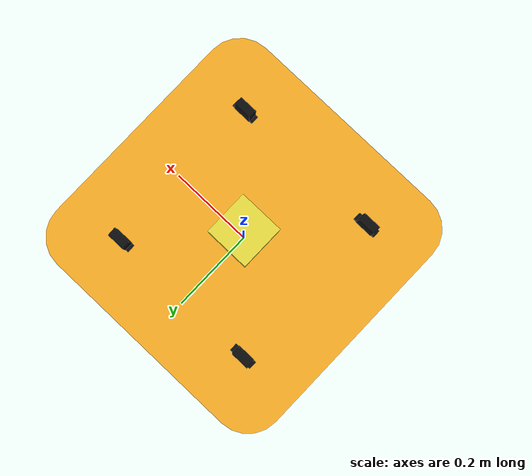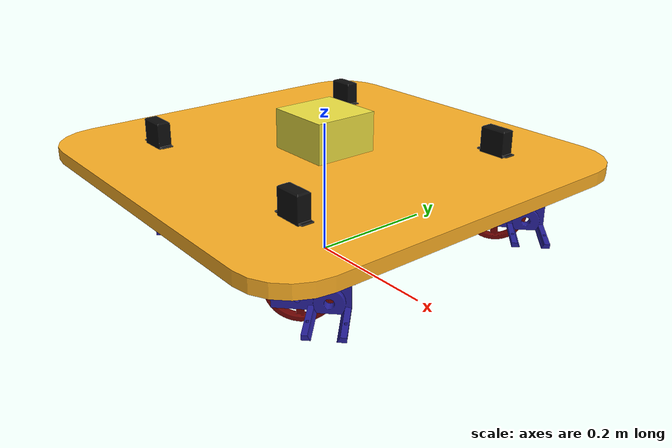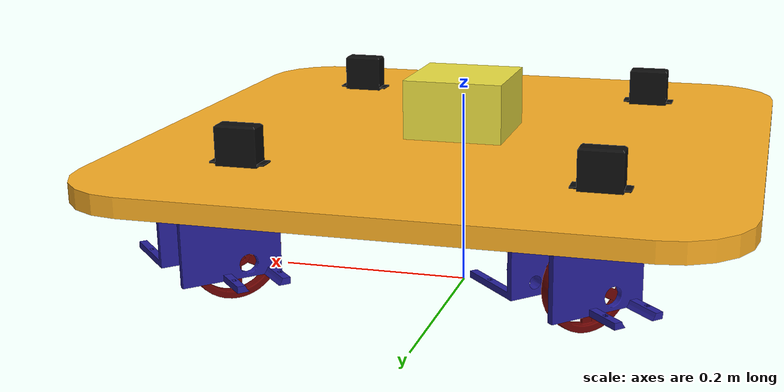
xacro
<?xml version="1.0"?>
<robot name="sparky" xmlns:xacro="http://www.ros.org/wiki/xacro">

	<!-- Define constants -->
	<!-- To Access these properties use "${Property_name}" -->
	<!-- NOTE: ALL masses are in KILOGRAMS (kg) and lengths are in METERS (m)-->

	<!-- PI constant -->
	<xacro:property name="PI" value="3.1415926535897932384626433832795"/>

	<!-- Plywood properties-->
	<xacro:property name="PLYWOOD_MASS" value="1"/>
	<xacro:property name="PLYWOOD_LENGTH" value="0.6096"/>
	<xacro:property name="PLYWOOD_WIDTH" value="0.6096"/>
	<xacro:property name="PLYWOOD_HEIGHT" value="0.01905"/>

	<!-- Servo properties -->
	<xacro:property name="SERVO_MASS" value="0.055"/>
	<xacro:property name="SERVO_LENGTH" value="0.05410"/>
	<xacro:property name="SERVO_WIDTH" value="0.02000"/>
	<xacro:property name="SERVO_HEIGHT" value="0.04425"/>
	<xacro:property name="SERVO_SHAFT_MASS" value="0.015"/>
	<xacro:property name="SERVO_SHAFT_RADIUS" value="0.003"/>
	<xacro:property name="SERVO_SHAFT_LENGTH" value="0.0254"/>

	<!-- Wheel housing structure properties -->
	<xacro:property name="WH_MASS" value="0.055"/>
	<xacro:property name="WH_LENGTH" value="0.1016"/>
	<xacro:property name="WH_WIDTH" value="0.0508"/>
	<xacro:property name="WH_HEIGHT" value="0.0508"/>

	<!-- Acetal wheel properties -->
	<xacro:property name="WHEEL_MASS" value="0.046"/>
	<xacro:property name="WHEEL_RADIUS" value="0.045"/>
	<xacro:property name="WHEEL_WIDTH" value="0.0236"/>

	<!-- Include files from urdf directory -->
	<xacro:include filename="$(find projx_robot_description)/urdf/projx_robot.gazebo"/>
	<xacro:include filename="$(find projx_robot_description)/urdf/materials.xacro"/>
	<xacro:include filename="$(find projx_robot_description)/urdf/point_structure_macro.xacro"/>
	<xacro:include filename="$(find projx_robot_description)/urdf/inertial_calc_macros.xacro"/>
	<xacro:include filename="$(find projx_robot_description)/urdf/imu_sensor.xacro"/>
	<xacro:include filename="$(find projx_robot_description)/urdf/RP_lidar_sensor.xacro"/>

	<!-- Define 2D representation of the base_link -->
    <link name="base_footprint"/>

    <!-- Robot base link -->
    <link name="base_link">

    	<!-- Collision parameters for the collision detection engine -->
    	<collision>
    		<geometry>
    			<box size="${PLYWOOD_LENGTH} ${PLYWOOD_WIDTH} ${PLYWOOD_HEIGHT}"/>
    		</geometry>
    	</collision>

    	<!-- Visual information for rendering model of robot base -->
        <visual>
            <geometry>
                <!-- Plywood is defined as a mesh file -->
                <mesh filename="package://projx_robot_description/meshes/robot_base_v1.dae"/>
            </geometry>
        </visual>

        <!-- Inertia info about robot base for the physics engine to use -->
        <inertial>
        	<mass value="${PLYWOOD_MASS}"/>
        	<box_inertia m="${PLYWOOD_MASS}" x="${PLYWOOD_LENGTH}" y="${PLYWOOD_WIDTH}" z="${PLYWOOD_HEIGHT}"/>
        </inertial>

    </link>

	<!-- Joint between FOOTPRINT and BASE -->
    <joint name="footprint_to_base_joint" type="fixed">
       <parent link="base_footprint"/>
	   <child link="base_link"/>

    	<!-- The base is about 6" of the ground -->
        <origin xyz="0 0 0.1524" rpy="0 0 0"/>
    </joint>

                        <!-- ################################## Robot sections ################################## -->
	<point_structure location="FL" x_translation="1" y_translation="1"/>
	<point_structure location="FR" x_translation="1" y_translation="-1"/>
	<point_structure location="RL" x_translation="-1" y_translation="-1"/>
	<point_structure location="RR" x_translation="-1" y_translation="1"/>

                        <!-- ################################## Sensors ################################## -->
	<imu_sensor x_offset="0" y_offset="0" z_offset="0" r="0" p="0" y="0"/>
	<RP_lidar_sensor x_offset="0" y_offset="0" z_offset="${PLYWOOD_HEIGHT}" r="0" p="0" y="0"/>
</robot>

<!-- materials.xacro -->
<robot>

	<!-- This file is used to define material information constants (mainly color) -->

	<material name="black">
	  <color rgba="0.0 0.0 0.0 1.0"/>
	</material>

	<material name="blue">
	  <color rgba="0.0 0.0 0.8 1.0"/>
	</material>

	<material name="green">
	  <color rgba="0.0 0.8 0.0 1.0"/>
	</material>

	<material name="grey">
	  <color rgba="0.2 0.2 0.2 1.0"/>
	</material>

	<material name="orange">
	  <color rgba="${255/255} ${108/255} ${10/255} 1.0"/>
	</material>

	<material name="brown">
	  <color rgba="${222/255} ${207/255} ${195/255} 1.0"/>
	</material>

	<material name="red">
	  <color rgba="0.8 0.0 0.0 1.0"/>
	</material>

	<material name="white">
	  <color rgba="1.0 1.0 1.0 1.0"/>
	</material>

</robot>

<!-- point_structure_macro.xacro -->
<robot>
	<!-- A whole macro for the whole wheel housing. It includes the servo and servo shaft -->
	<macro name="point_structure" params="location x_translation y_translation">

                       <!-- ######################################### Servo ######################################### -->
		<!-- Servo link-->
		<link name="${location}_servo_link">
			<collision>
				<geometry>
					<box size="${SERVO_LENGTH} ${SERVO_WIDTH} ${SERVO_HEIGHT}"/>
				</geometry>
			</collision>

			<visual>
				<geometry>
					<!-- Actual servo dimensions: LxWxH = 54.10mm x 20mm x 44.25mm -->
					<mesh filename="package://projx_robot_description/meshes/servo_v1.dae"/>
				</geometry>
			</visual>

			<inertial>
				<!-- Utilize "box_inertia" macro defined in macros.xacro -->
				<mass value="${SERVO_MASS}"/>
				<box_inertia m="${SERVO_MASS}" x="${SERVO_LENGTH}" y="${SERVO_WIDTH}" z="${SERVO_HEIGHT}"/>
			</inertial>

		</link>

		<!-- Joint between BASE and ${location} SERVO -->
		<joint name="base_to_${location}_servo_joint" type="fixed">
			<parent link="base_link"/>
			<child link="${location}_servo_link"/>

			<!-- REMEMBER: box size is in TOTAL. Distance from origin to edge is half! -->
			<origin xyz="${x_translation * 0.1682} ${y_translation * 0.1801} 0.0275" rpy="0 0 0"/>
		</joint>

                       <!-- ######################################### Servo shaft ######################################### -->

		<!-- Servo shaft link-->
		<link name="${location}_shaft_link">

			<collision>
				<geometry>
					<!-- Servo Shaft dimensions: radius=3.0mm, length=25.4mm  -->
					<cylinder radius="${SERVO_SHAFT_RADIUS}" length="${SERVO_SHAFT_LENGTH}"/>
				</geometry>
			</collision>

			<visual>
				<geometry>
					<!-- Servo Shaft dimensions: radius=3.0mm, length=25.4mm  -->
					<cylinder radius="${SERVO_SHAFT_RADIUS}" length="${SERVO_SHAFT_LENGTH}"/>
				</geometry>
			</visual>

			<inertial>
				<mass value="${SERVO_SHAFT_MASS}"/>
				<cylinder_inertia m="${SERVO_SHAFT_MASS}" r="${SERVO_SHAFT_RADIUS}" h="${SERVO_SHAFT_LENGTH}"/>
			</inertial>
		</link>

		<!-- Joint between ${location} SERVO and ${location} SERVO SHAFT -->
		<joint name="${location}_servo_to_${location}_shaft_joint" type="revolute">
			<parent link="${location}_servo_link"/>
			<child link="${location}_shaft_link"/>
			<axis xyz="0 0 1"/>

			<!-- This origin offset places the newly created shaft link right in line with the servo's shaft-->
			<origin xyz="0.00983 0.00102 -0.03319" rpy="0 0 0"/>
			<limit lower="${PI * -1}" upper="${PI/2 * -1}" effort="100" velocity="100"/>
		</joint>

                       <!-- ######################################### Wheel housing structure ######################################### -->

		<!-- Front left wheel housing structure link -->
		<link name="${location}_wheel_housing_structure_link">
			<collision>
				<geometry>
					<mesh filename="package://projx_robot_description/meshes/wheel_housing_structure_v1.dae"/>
				</geometry>
			</collision>

			<visual>
				<geometry>
					<mesh filename="package://projx_robot_description/meshes/wheel_housing_structure_v1.dae"/>
				</geometry>
			</visual>

			<inertial>
				<mass value="${WH_MASS}"/>
				<box_inertia m="${WH_MASS}" x="${WH_LENGTH}" y="${WH_WIDTH}" z="${WH_HEIGHT}"/>
			</inertial>
		</link>

		<!-- Joint between FL SERVO SHAFT and FL WHEEL HOUSING STRUCTURE -->
		<joint name="${location}_shaft_to_${location}_wheel_housing_structure_joint" type="fixed">
			<parent link="${location}_shaft_link"/>
			<child link="${location}_wheel_housing_structure_link"/>

			<!-- This origin offset places the shaft right into the hole of the wheel housing structure -->
			<origin xyz="-0.01771 0.00 -0.04521" rpy="0 0 0"/>
		</joint>

                       <!-- ######################################### Acetal Wheel ######################################### -->

		<!-- Acetal wheel link -->
		<link name="${location}_acetal_wheel_link">

			<collision>
				<geometry>
					<mesh filename="package://projx_robot_description/meshes/acetal_wheel_v1.dae"/>
				</geometry>
			</collision>

			<surface>
				<friction>
					<ode>
						<mu>1.0</mu>
						<mu2>1.0</mu2>
					</ode>
				</friction>
      		</surface>

			<visual>
				<geometry>
					<mesh filename="package://projx_robot_description/meshes/acetal_wheel_v1.dae"/>
				</geometry>
			</visual>

			<inertial>
				<mass value="${WHEEL_MASS}"/>
				<cylinder_inertia m="${WHEEL_MASS}" r="${WHEEL_RADIUS}" h="${WHEEL_WIDTH}"/>
			</inertial>

			<gazebo reference="${location}_acetal_wheel_link">
				<mu1 value="1.0"/>
				<mu2 value="1.0"/>
				<kp  value="10000000.0" />
				<kd  value="1.0" />
				<fdir1 value="1 0 0"/>
			</gazebo>

		</link>

		<!-- Joint between FL WHEEL HOUSING STRUCTURE and FL ACETAL WHEEL -->
		<joint name="${location}_wheel_housing_structure_to_${location}_acetal_wheel_joint" type="continuous">
			<parent link="${location}_wheel_housing_structure_link"/>
			<child link="${location}_acetal_wheel_link"/>

			<!-- Rotate around the Y axis -->
			<axis xyz="0 1 0"/>

			<!-- This origin offset places the wheel in line with the rotary encoder hole -->
			<origin xyz="0.01853 0 -0.02573"/>
			<limit effort="10" velocity="10"/>
		</joint>

                       <!-- ######################################### Transmission tags ######################################### -->

		<!-- Transmission tag for wheel joint -->
		<transmission name="${location}_wheel_trans">
			<type>transmission_interface/SimpleTransmission</type>
			<joint name="${location}_wheel_housing_structure_to_${location}_acetal_wheel_joint">
				<hardwareInterface>hardware_interface/EffortJointInterface</hardwareInterface>
			</joint>
			<actuator name="${location}_motor">
				<hardwareInterface>hardware_interface/EffortJointInterface</hardwareInterface>
				<mechanicalReduction>10</mechanicalReduction>
			</actuator>
		</transmission>

		<!-- Transmission tag for servo joint -->
		<transmission name="${location}_servo_trans">
			<type>transmission_interface/SimpleTransmission</type>
			<joint name="${location}_servo_to_${location}_shaft_joint">
				<hardwareInterface>hardware_interface/EffortJointInterface</hardwareInterface>
			</joint>
			<actuator name="${location}_servo">
				<hardwareInterface>hardware_interface/EffortJointInterface</hardwareInterface>
				<mechanicalReduction>10</mechanicalReduction>
			</actuator>
		</transmission>

	</macro> <!-- End point_structure macro -->

</robot>

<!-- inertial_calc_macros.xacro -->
<robot>

	<!-- Inertia calculation function for a cylinder -->
    <macro name="cylinder_inertia" params="m r h">
    	<inertia ixx="${m*(3*r*r+h*h)/12}"
    			 ixy = "0"
    			 ixz = "0"
        		 iyy="${m*(3*r*r+h*h)/12}"
        		 iyz = "0"
        		 izz="${m*r*r/2}"
     	/>
    </macro>

	<!-- Inertia calculation function for a box -->
    <macro name="box_inertia" params="m x y z">
     	<inertia ixx="${m*(y*y+z*z)/12}"
     			 ixy = "0"
     			 ixz = "0"
        		 iyy="${m*(x*x+z*z)/12}"
        		 iyz = "0"
        		 izz="${m*(x*x+z*z)/12}"
     	/>
    </macro>

	<!-- Inertia calculation function for a sphere -->
    <macro name="sphere_inertia" params="m r">
     	<inertia ixx="${2*m*r*r/5}"
     			 ixy = "0"
     			 ixz = "0"
        		 iyy="${2*m*r*r/5}"
        		 iyz = "0"
        		 izz="${2*m*r*r/5}"
        />
    </macro>

</robot>

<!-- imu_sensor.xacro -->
<robot>
	<!-- Reference: https://answers.ros.org/question/12430/modelling-sensorsimu-in-gazebo/ -->
	<macro name="imu_sensor" params="x_offset y_offset z_offset r p y">

		<link name="imu_link">
			<inertial>
				<mass value="0.005"/>
				<box_inertia m="0.005" x="0.02426" y="0.02426" z="0.00175"/>
			</inertial>
			<visual>
				<geometry>
					<box size="0.02426 0.02426 0.00175"/>
				</geometry>
			</visual>
			<collision>
				<geometry>
                	<box size="0.02426 0.02426 0.00175"/>
                </geometry>
			</collision>
		</link>

		<joint name="base_link_to_imu_joint" type="fixed">
			<parent link="base_link"/>
			<child link="imu_link"/>
			<origin xyz="${x_offset} ${y_offset} ${z_offset}" rpy="${r} ${p} ${y}"/>
		</joint>
	</macro>
</robot>

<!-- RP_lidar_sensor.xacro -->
<robot>

    <!-- Define macro for the RP lidar sensor -->
    <macro name="RP_lidar_sensor" params="x_offset y_offset z_offset r p y">

        <!-- Define a link for the RP lidar sensor -->
        <link name="RP_lidar_link">
            <collision>
                <origin xyz="0 0 0" rpy="0 0 0"/>
                <geometry>
                    <box size="0.1 0.1 0.1"/>
                </geometry>
            </collision>

            <visual>
                <origin xyz="0 0 0" rpy="0 0 0"/>
                <geometry>
                    <box size="0.1 0.1 0.1"/>
                </geometry>
            </visual>

            <inertial>
                <mass value="1e-5" />
                <origin xyz="0 0 0" rpy="0 0 0"/>
                <inertia ixx="1e-6" ixy="0" ixz="0" iyy="1e-6" iyz="0" izz="1e-6" />
            </inertial>
        </link>

        <!-- Link the base_link and RP_lidar link together -->
        <joint name="base_link_to_RP_lidar_joint" type="fixed">
            <axis xyz="0 1 0" />
            <origin xyz="${x_offset} ${y_offset} ${z_offset}" rpy="${r} ${p} ${y}"/>
            <parent link="base_link"/>
            <child link="RP_lidar_link"/>
        </joint>

    </macro>

</robot>
